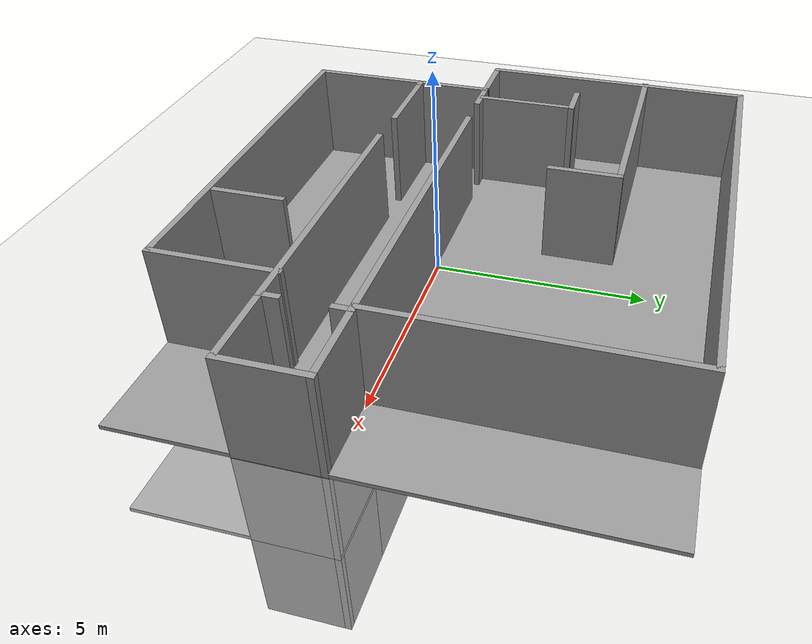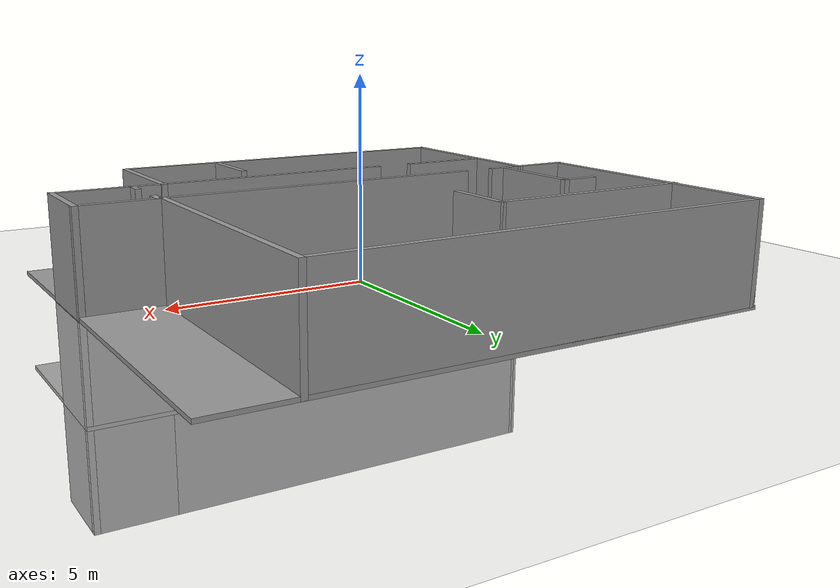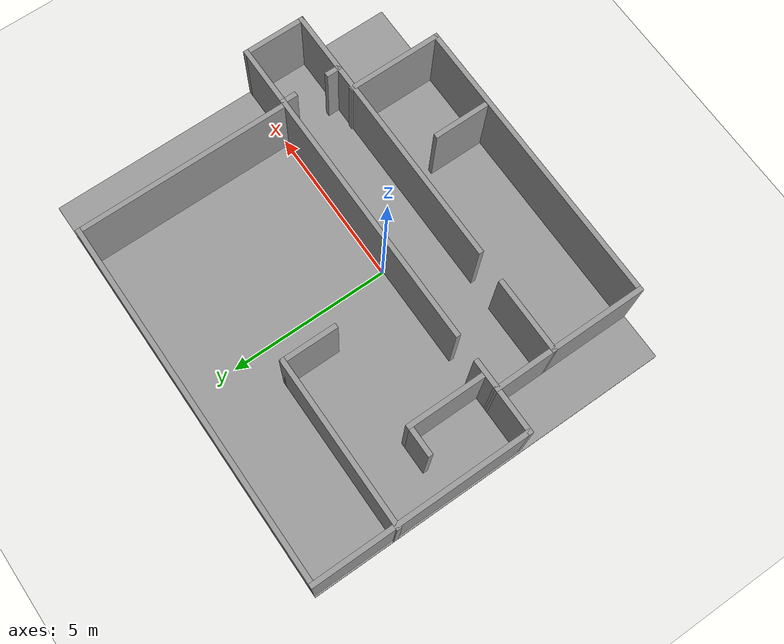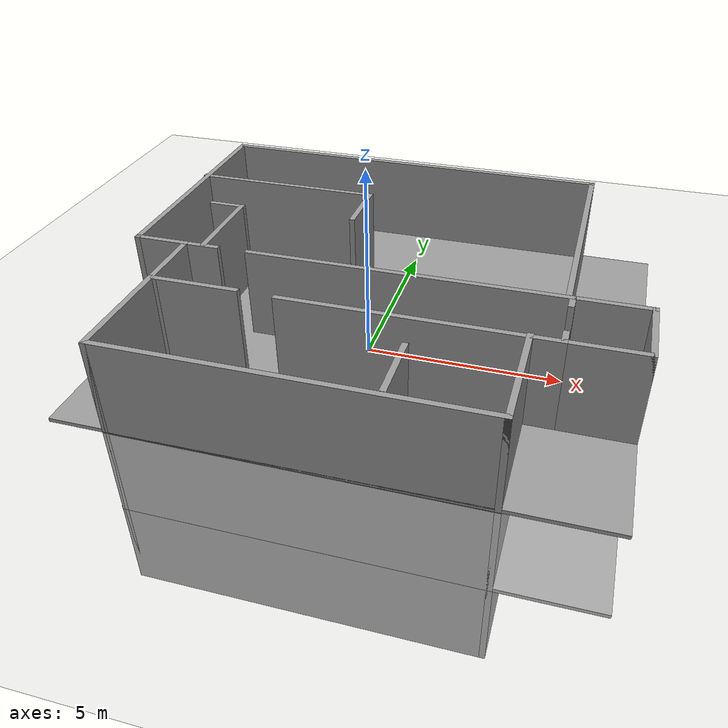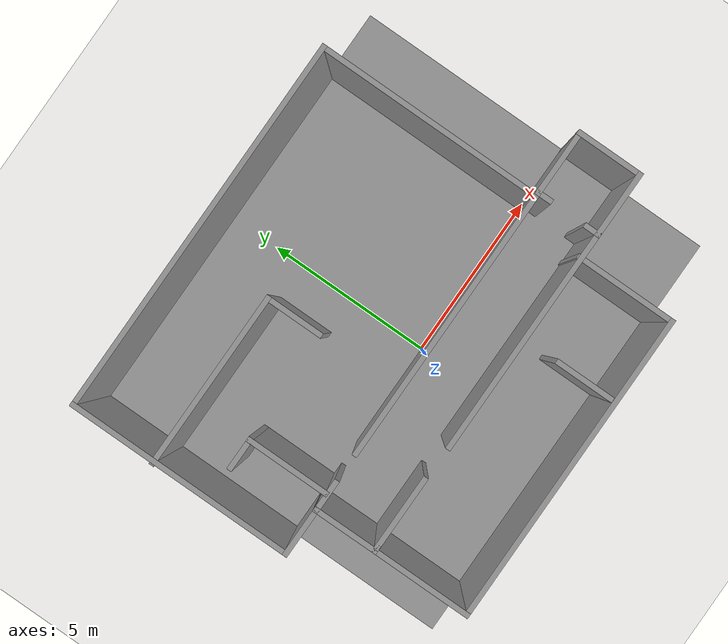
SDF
<sdf version="1.7">
 <world name="default">
  <light name="sun" type="directional">
   <pose>0 0 10 0 -0 0</pose>
   <diffuse>0.8 0.8 0.8 1</diffuse>
   <specular>0.2 0.2 0.2 1</specular>
   <attenuation>
    <range>1000</range>
    <constant>0.9</constant>
    <linear>0.01</linear>
    <quadratic>0.001</quadratic>
   </attenuation>
   <direction>-0.5 0.1 -0.9</direction>
   <spot><inner_angle>0</inner_angle><outer_angle>0</outer_angle><falloff>0</falloff></spot>
  </light>
  <model name="ground_plane">
   <static>1</static>
   <link name="link">
    <collision name="collision">
     <geometry><plane><normal>0 0 1</normal><size>100 100</size></plane></geometry>
     <surface>
      <contact><collide_bitmask>65535</collide_bitmask></contact>
      <friction><ode><mu>100</mu><mu2>50</mu2></ode></friction>
     </surface>
    </collision>
    <visual name="visual">
     <cast_shadows>0</cast_shadows>
     <geometry><plane><normal>0 0 1</normal><size>100 100</size></plane></geometry>
     <material>
      <script><uri>file://media/materials/scripts/gazebo.material</uri><name>Gazebo/Grey</name></script>
     </material>
    </visual>
   </link>
  </model>
  <gravity>0 0 -9.8</gravity>
  <magnetic_field>6e-06 2.3e-05 -4.2e-05</magnetic_field>
  <atmosphere type="adiabatic"/>
  <physics type="ode">
   <max_step_size>0.001</max_step_size>
   <real_time_factor>1</real_time_factor>
   <real_time_update_rate>1000</real_time_update_rate>
  </physics>
  <scene><ambient>0.4 0.4 0.4 1</ambient><background>0.7 0.7 0.7 1</background><shadows>1</shadows></scene>
  <audio><device>default</device></audio>
  <spherical_coordinates>
   <surface_model>EARTH_WGS84</surface_model>
   <latitude_deg>0</latitude_deg>
   <longitude_deg>0</longitude_deg>
   <elevation>0</elevation>
   <heading_deg>0</heading_deg>
  </spherical_coordinates>
  <model name="robotiklubi">
   <pose>0.28929 0.886817 -5 0 -0 0</pose>
   <link name="Floor_0">
    <collision name="Floor_0_Collision">
     <geometry><box><size>11.8504 4.81041 0.1</size></box></geometry>
     <pose>0 0 0.05 0 -0 0</pose>
    </collision>
    <visual name="Floor_0_Visual">
     <pose>0 0 0.05 0 -0 0</pose>
     <geometry><box><size>11.8504 4.81041 0.1</size></box></geometry>
     <material>
      <script><uri>file://media/materials/scripts/gazebo.material</uri><name>Gazebo/Grey</name></script>
      <ambient>1 1 1 1</ambient>
     </material>
     <meta><layer>1</layer></meta>
    </visual>
    <pose>0.696404 -3.29979 2.5 0 -0 0</pose>
   </link>
   <link name="Floor_1">
    <collision name="Floor_1_Collision">
     <geometry><box><size>13.2432 11.41 0.1</size></box></geometry>
     <pose>0 0 0.05 0 -0 0</pose>
    </collision>
    <visual name="Floor_1_Visual">
     <pose>0 0 0.05 0 -0 0</pose>
     <geometry><box><size>13.2432 11.41 0.1</size></box></geometry>
     <material>
      <script><uri>file://media/materials/scripts/gazebo.material</uri><name>Gazebo/Grey</name></script>
      <ambient>1 1 1 1</ambient>
     </material>
     <meta><layer>2</layer></meta>
    </visual>
    <pose>-0 -0 5 0 -0 0</pose>
   </link>
   <link name="Wall_0">
    <collision name="Wall_0_Collision">
     <geometry><box><size>10 0.15 2.5</size></box></geometry>
     <pose>0 0 1.25 0 -0 0</pose>
    </collision>
    <visual name="Wall_0_Visual">
     <pose>0 0 1.25 0 -0 0</pose>
     <geometry><box><size>10 0.15 2.5</size></box></geometry>
     <material>
      <script><uri>file://media/materials/scripts/gazebo.material</uri><name>Gazebo/Grey</name></script>
      <ambient>1 1 1 1</ambient>
     </material>
     <meta><layer>0</layer></meta>
    </visual>
    <pose>-0.22839 -0.97 0 0 -0 0</pose>
   </link>
   <link name="Wall_10">
    <collision name="Wall_10_Collision">
     <geometry><box><size>6.75 0.15 2.5</size></box></geometry>
     <pose>0 0 1.25 0 -0 0</pose>
    </collision>
    <visual name="Wall_10_Visual">
     <pose>0 0 1.25 0 -0 0</pose>
     <geometry><box><size>6.75 0.15 2.5</size></box></geometry>
     <material>
      <script><uri>file://media/materials/scripts/gazebo.material</uri><name>Gazebo/Grey</name></script>
      <ambient>1 1 1 1</ambient>
     </material>
     <meta><layer>0</layer></meta>
    </visual>
    <pose>1.39661 -2.82 0 0 -0 3.14159</pose>
   </link>
   <link name="Wall_13">
    <collision name="Wall_13_Collision">
     <geometry><box><size>2.25 0.15 2.5</size></box></geometry>
     <pose>0 0 1.25 0 -0 0</pose>
    </collision>
    <visual name="Wall_13_Visual">
     <pose>0 0 1.25 0 -0 0</pose>
     <geometry><box><size>2.25 0.15 2.5</size></box></geometry>
     <material>
      <script><uri>file://media/materials/scripts/gazebo.material</uri><name>Gazebo/Grey</name></script>
      <ambient>1 1 1 1</ambient>
     </material>
     <meta><layer>0</layer></meta>
    </visual>
    <pose>-3.99339 -2.78 0 0 -0 3.14159</pose>
   </link>
   <link name="Wall_14">
    <collision name="Wall_14_Collision">
     <geometry><box><size>0.25 0.15 2.5</size></box></geometry>
     <pose>0 0 1.25 0 -0 0</pose>
    </collision>
    <visual name="Wall_14_Visual">
     <pose>0 0 1.25 0 -0 0</pose>
     <geometry><box><size>0.25 0.15 2.5</size></box></geometry>
     <material>
      <script><uri>file://media/materials/scripts/gazebo.material</uri><name>Gazebo/Grey</name></script>
      <ambient>1 1 1 1</ambient>
     </material>
     <meta><layer>0</layer></meta>
    </visual>
    <pose>-5.09339 -2.78 0 0 -0 3.14159</pose>
   </link>
   <link name="Wall_15">
    <collision name="Wall_15_Collision">
     <geometry><box><size>1.96003 0.15 2.5</size></box></geometry>
     <pose>0 0 1.25 0 -0 0</pose>
    </collision>
    <visual name="Wall_15_Visual">
     <pose>0 0 1.25 0 -0 0</pose>
     <geometry><box><size>1.96003 0.15 2.5</size></box></geometry>
     <material>
      <script><uri>file://media/materials/scripts/gazebo.material</uri><name>Gazebo/Grey</name></script>
      <ambient>1 1 1 1</ambient>
     </material>
     <meta><layer>0</layer></meta>
    </visual>
    <pose>-5.14839 -1.875 0 0 -0 1.57632</pose>
   </link>
   <link name="Wall_19">
    <collision name="Wall_19_Collision">
     <geometry><box><size>3 0.15 2.5</size></box></geometry>
     <pose>0 0 1.25 0 -0 0</pose>
    </collision>
    <visual name="Wall_19_Visual">
     <pose>0 0 1.25 0 -0 0</pose>
     <geometry><box><size>3 0.15 2.5</size></box></geometry>
     <material>
      <script><uri>file://media/materials/scripts/gazebo.material</uri><name>Gazebo/Grey</name></script>
      <ambient>1 1 1 1</ambient>
     </material>
     <meta><layer>0</layer></meta>
    </visual>
    <pose>-5.14339 -4.205 0 0 -0 -1.5708</pose>
   </link>
   <link name="Wall_2">
    <collision name="Wall_2_Collision">
     <geometry><box><size>2 0.15 2.5</size></box></geometry>
     <pose>0 0 1.25 0 -0 0</pose>
    </collision>
    <visual name="Wall_2_Visual">
     <pose>0 0 1.25 0 -0 0</pose>
     <geometry><box><size>2 0.15 2.5</size></box></geometry>
     <material>
      <script><uri>file://media/materials/scripts/gazebo.material</uri><name>Gazebo/Grey</name></script>
      <ambient>1 1 1 1</ambient>
     </material>
     <meta><layer>0</layer></meta>
    </visual>
    <pose>5.62161 -2.82 0 0 -0 0</pose>
   </link>
   <link name="Wall_20">
    <collision name="Wall_20_Collision">
     <geometry><box><size>9.25 0.15 2.5</size></box></geometry>
     <pose>0 0 1.25 0 -0 0</pose>
    </collision>
    <visual name="Wall_20_Visual">
     <pose>0 0 1.25 0 -0 0</pose>
     <geometry><box><size>9.25 0.15 2.5</size></box></geometry>
     <material>
      <script><uri>file://media/materials/scripts/gazebo.material</uri><name>Gazebo/Grey</name></script>
      <ambient>1 1 1 1</ambient>
     </material>
     <meta><layer>0</layer></meta>
    </visual>
    <pose>-0.59339 -5.63 0 0 -0 0</pose>
   </link>
   <link name="Wall_21">
    <collision name="Wall_21_Collision">
     <geometry><box><size>3 0.15 2.5</size></box></geometry>
     <pose>0 0 1.25 0 -0 0</pose>
    </collision>
    <visual name="Wall_21_Visual">
     <pose>0 0 1.25 0 -0 0</pose>
     <geometry><box><size>3 0.15 2.5</size></box></geometry>
     <material>
      <script><uri>file://media/materials/scripts/gazebo.material</uri><name>Gazebo/Grey</name></script>
      <ambient>1 1 1 1</ambient>
     </material>
     <meta><layer>0</layer></meta>
    </visual>
    <pose>3.95661 -4.205 0 0 -0 1.5708</pose>
   </link>
   <link name="Wall_23">
    <collision name="Wall_23_Collision">
     <geometry><box><size>10 0.15 2.5</size></box></geometry>
     <pose>0 0 1.25 0 -0 0</pose>
    </collision>
    <visual name="Wall_23_Visual">
     <pose>0 0 1.25 0 -0 0</pose>
     <geometry><box><size>10 0.15 2.5</size></box></geometry>
     <material>
      <script><uri>file://media/materials/scripts/gazebo.material</uri><name>Gazebo/Grey</name></script>
      <ambient>1 1 1 1</ambient>
     </material>
     <meta><layer>1</layer></meta>
    </visual>
    <pose>-0.22839 -0.97 2.5 0 -0 0</pose>
   </link>
   <link name="Wall_24">
    <collision name="Wall_24_Collision">
     <geometry><box><size>2 0.15 2.5</size></box></geometry>
     <pose>0 0 1.25 0 -0 0</pose>
    </collision>
    <visual name="Wall_24_Visual">
     <pose>0 0 1.25 0 -0 0</pose>
     <geometry><box><size>2 0.15 2.5</size></box></geometry>
     <material>
      <script><uri>file://media/materials/scripts/gazebo.material</uri><name>Gazebo/Grey</name></script>
      <ambient>1 1 1 1</ambient>
     </material>
     <meta><layer>1</layer></meta>
    </visual>
    <pose>5.62161 -2.82 2.5 0 -0 0</pose>
   </link>
   <link name="Wall_25">
    <collision name="Wall_25_Collision">
     <geometry><box><size>2 0.15 2.5</size></box></geometry>
     <pose>0 0 1.25 0 -0 0</pose>
    </collision>
    <visual name="Wall_25_Visual">
     <pose>0 0 1.25 0 -0 0</pose>
     <geometry><box><size>2 0.15 2.5</size></box></geometry>
     <material>
      <script><uri>file://media/materials/scripts/gazebo.material</uri><name>Gazebo/Grey</name></script>
      <ambient>1 1 1 1</ambient>
     </material>
     <meta><layer>1</layer></meta>
    </visual>
    <pose>6.54661 -1.895 2.5 0 -0 1.5708</pose>
   </link>
   <link name="Wall_26">
    <collision name="Wall_26_Collision">
     <geometry><box><size>2 0.15 2.5</size></box></geometry>
     <pose>0 0 1.25 0 -0 0</pose>
    </collision>
    <visual name="Wall_26_Visual">
     <pose>0 0 1.25 0 -0 0</pose>
     <geometry><box><size>2 0.15 2.5</size></box></geometry>
     <material>
      <script><uri>file://media/materials/scripts/gazebo.material</uri><name>Gazebo/Grey</name></script>
      <ambient>1 1 1 1</ambient>
     </material>
     <meta><layer>1</layer></meta>
    </visual>
    <pose>5.62161 -0.97 2.5 0 -0 3.14159</pose>
   </link>
   <link name="Wall_27">
    <collision name="Wall_27_Collision">
     <geometry><box><size>0.5 0.15 2.5</size></box></geometry>
     <pose>0 0 1.25 0 -0 0</pose>
    </collision>
    <visual name="Wall_27_Visual">
     <pose>0 0 1.25 0 -0 0</pose>
     <geometry><box><size>0.5 0.15 2.5</size></box></geometry>
     <material>
      <script><uri>file://media/materials/scripts/gazebo.material</uri><name>Gazebo/Grey</name></script>
      <ambient>1 1 1 1</ambient>
     </material>
     <meta><layer>1</layer></meta>
    </visual>
    <pose>4.69661 -2.645 2.5 0 -0 1.5708</pose>
   </link>
   <link name="Wall_28">
    <collision name="Wall_28_Collision">
     <geometry><box><size>0.5 0.15 2.5</size></box></geometry>
     <pose>0 0 1.25 0 -0 0</pose>
    </collision>
    <visual name="Wall_28_Visual">
     <pose>0 0 1.25 0 -0 0</pose>
     <geometry><box><size>0.5 0.15 2.5</size></box></geometry>
     <material>
      <script><uri>file://media/materials/scripts/gazebo.material</uri><name>Gazebo/Grey</name></script>
      <ambient>1 1 1 1</ambient>
     </material>
     <meta><layer>1</layer></meta>
    </visual>
    <pose>4.69661 -1.145 2.5 0 -0 -1.5708</pose>
   </link>
   <link name="Wall_29">
    <collision name="Wall_29_Collision">
     <geometry><box><size>6.75 0.15 2.5</size></box></geometry>
     <pose>0 0 1.25 0 -0 0</pose>
    </collision>
    <visual name="Wall_29_Visual">
     <pose>0 0 1.25 0 -0 0</pose>
     <geometry><box><size>6.75 0.15 2.5</size></box></geometry>
     <material>
      <script><uri>file://media/materials/scripts/gazebo.material</uri><name>Gazebo/Grey</name></script>
      <ambient>1 1 1 1</ambient>
     </material>
     <meta><layer>1</layer></meta>
    </visual>
    <pose>1.39661 -2.82 2.5 0 -0 3.14159</pose>
   </link>
   <link name="Wall_3">
    <collision name="Wall_3_Collision">
     <geometry><box><size>2 0.15 2.5</size></box></geometry>
     <pose>0 0 1.25 0 -0 0</pose>
    </collision>
    <visual name="Wall_3_Visual">
     <pose>0 0 1.25 0 -0 0</pose>
     <geometry><box><size>2 0.15 2.5</size></box></geometry>
     <material>
      <script><uri>file://media/materials/scripts/gazebo.material</uri><name>Gazebo/Grey</name></script>
      <ambient>1 1 1 1</ambient>
     </material>
     <meta><layer>0</layer></meta>
    </visual>
    <pose>6.54661 -1.895 0 0 -0 1.5708</pose>
   </link>
   <link name="Wall_30">
    <collision name="Wall_30_Collision">
     <geometry><box><size>2.25 0.15 2.5</size></box></geometry>
     <pose>0 0 1.25 0 -0 0</pose>
    </collision>
    <visual name="Wall_30_Visual">
     <pose>0 0 1.25 0 -0 0</pose>
     <geometry><box><size>2.25 0.15 2.5</size></box></geometry>
     <material>
      <script><uri>file://media/materials/scripts/gazebo.material</uri><name>Gazebo/Grey</name></script>
      <ambient>1 1 1 1</ambient>
     </material>
     <meta><layer>1</layer></meta>
    </visual>
    <pose>-3.99339 -2.78 2.5 0 -0 3.14159</pose>
   </link>
   <link name="Wall_31">
    <collision name="Wall_31_Collision">
     <geometry><box><size>0.25 0.15 2.5</size></box></geometry>
     <pose>0 0 1.25 0 -0 0</pose>
    </collision>
    <visual name="Wall_31_Visual">
     <pose>0 0 1.25 0 -0 0</pose>
     <geometry><box><size>0.25 0.15 2.5</size></box></geometry>
     <material>
      <script><uri>file://media/materials/scripts/gazebo.material</uri><name>Gazebo/Grey</name></script>
      <ambient>1 1 1 1</ambient>
     </material>
     <meta><layer>1</layer></meta>
    </visual>
    <pose>-5.09339 -2.78 2.5 0 -0 3.14159</pose>
   </link>
   <link name="Wall_32">
    <collision name="Wall_32_Collision">
     <geometry><box><size>1.96003 0.15 2.5</size></box></geometry>
     <pose>0 0 1.25 0 -0 0</pose>
    </collision>
    <visual name="Wall_32_Visual">
     <pose>0 0 1.25 0 -0 0</pose>
     <geometry><box><size>1.96003 0.15 2.5</size></box></geometry>
     <material>
      <script><uri>file://media/materials/scripts/gazebo.material</uri><name>Gazebo/Grey</name></script>
      <ambient>1 1 1 1</ambient>
     </material>
     <meta><layer>1</layer></meta>
    </visual>
    <pose>-5.14839 -1.875 2.5 0 -0 1.57632</pose>
   </link>
   <link name="Wall_33">
    <collision name="Wall_33_Collision">
     <geometry><box><size>3 0.15 2.5</size></box></geometry>
     <pose>0 0 1.25 0 -0 0</pose>
    </collision>
    <visual name="Wall_33_Visual">
     <pose>0 0 1.25 0 -0 0</pose>
     <geometry><box><size>3 0.15 2.5</size></box></geometry>
     <material>
      <script><uri>file://media/materials/scripts/gazebo.material</uri><name>Gazebo/Grey</name></script>
      <ambient>1 1 1 1</ambient>
     </material>
     <meta><layer>1</layer></meta>
    </visual>
    <pose>-5.14339 -4.205 2.5 0 -0 -1.5708</pose>
   </link>
   <link name="Wall_34">
    <collision name="Wall_34_Collision">
     <geometry><box><size>9.25 0.15 2.5</size></box></geometry>
     <pose>0 0 1.25 0 -0 0</pose>
    </collision>
    <visual name="Wall_34_Visual">
     <pose>0 0 1.25 0 -0 0</pose>
     <geometry><box><size>9.25 0.15 2.5</size></box></geometry>
     <material>
      <script><uri>file://media/materials/scripts/gazebo.material</uri><name>Gazebo/Grey</name></script>
      <ambient>1 1 1 1</ambient>
     </material>
     <meta><layer>1</layer></meta>
    </visual>
    <pose>-0.59339 -5.63 2.5 0 -0 0</pose>
   </link>
   <link name="Wall_35">
    <collision name="Wall_35_Collision">
     <geometry><box><size>3 0.15 2.5</size></box></geometry>
     <pose>0 0 1.25 0 -0 0</pose>
    </collision>
    <visual name="Wall_35_Visual">
     <pose>0 0 1.25 0 -0 0</pose>
     <geometry><box><size>3 0.15 2.5</size></box></geometry>
     <material>
      <script><uri>file://media/materials/scripts/gazebo.material</uri><name>Gazebo/Grey</name></script>
      <ambient>1 1 1 1</ambient>
     </material>
     <meta><layer>1</layer></meta>
    </visual>
    <pose>3.95661 -4.205 2.5 0 -0 1.5708</pose>
   </link>
   <link name="Wall_37">
    <collision name="Wall_37_Collision">
     <geometry><box><size>2 0.15 2.5</size></box></geometry>
     <pose>0 0 1.25 0 -0 0</pose>
    </collision>
    <visual name="Wall_37_Visual">
     <pose>0 0 1.25 0 -0 0</pose>
     <geometry><box><size>2 0.15 2.5</size></box></geometry>
     <material>
      <script><uri>file://media/materials/scripts/gazebo.material</uri><name>Gazebo/Grey</name></script>
      <ambient>1 1 1 1</ambient>
     </material>
     <meta><layer>2</layer></meta>
    </visual>
    <pose>5.62161 -2.82 5 0 -0 0</pose>
   </link>
   <link name="Wall_38">
    <collision name="Wall_38_Collision">
     <geometry><box><size>2 0.15 2.5</size></box></geometry>
     <pose>0 0 1.25 0 -0 0</pose>
    </collision>
    <visual name="Wall_38_Visual">
     <pose>0 0 1.25 0 -0 0</pose>
     <geometry><box><size>2 0.15 2.5</size></box></geometry>
     <material>
      <script><uri>file://media/materials/scripts/gazebo.material</uri><name>Gazebo/Grey</name></script>
      <ambient>1 1 1 1</ambient>
     </material>
     <meta><layer>2</layer></meta>
    </visual>
    <pose>6.54661 -1.895 5 0 -0 1.5708</pose>
   </link>
   <link name="Wall_39">
    <collision name="Wall_39_Collision">
     <geometry><box><size>2 0.15 2.5</size></box></geometry>
     <pose>0 0 1.25 0 -0 0</pose>
    </collision>
    <visual name="Wall_39_Visual">
     <pose>0 0 1.25 0 -0 0</pose>
     <geometry><box><size>2 0.15 2.5</size></box></geometry>
     <material>
      <script><uri>file://media/materials/scripts/gazebo.material</uri><name>Gazebo/Grey</name></script>
      <ambient>1 1 1 1</ambient>
     </material>
     <meta><layer>2</layer></meta>
    </visual>
    <pose>5.62161 -0.97 5 0 -0 3.14159</pose>
   </link>
   <link name="Wall_4">
    <collision name="Wall_4_Collision">
     <geometry><box><size>2 0.15 2.5</size></box></geometry>
     <pose>0 0 1.25 0 -0 0</pose>
    </collision>
    <visual name="Wall_4_Visual">
     <pose>0 0 1.25 0 -0 0</pose>
     <geometry><box><size>2 0.15 2.5</size></box></geometry>
     <material>
      <script><uri>file://media/materials/scripts/gazebo.material</uri><name>Gazebo/Grey</name></script>
      <ambient>1 1 1 1</ambient>
     </material>
     <meta><layer>0</layer></meta>
    </visual>
    <pose>5.62161 -0.97 0 0 -0 3.14159</pose>
   </link>
   <link name="Wall_40">
    <collision name="Wall_40_Collision">
     <geometry><box><size>0.5 0.15 2.5</size></box></geometry>
     <pose>0 0 1.25 0 -0 0</pose>
    </collision>
    <visual name="Wall_40_Visual">
     <pose>0 0 1.25 0 -0 0</pose>
     <geometry><box><size>0.5 0.15 2.5</size></box></geometry>
     <material>
      <script><uri>file://media/materials/scripts/gazebo.material</uri><name>Gazebo/Grey</name></script>
      <ambient>1 1 1 1</ambient>
     </material>
     <meta><layer>2</layer></meta>
    </visual>
    <pose>4.69661 -2.645 5 0 -0 1.5708</pose>
   </link>
   <link name="Wall_41">
    <collision name="Wall_41_Collision">
     <geometry><box><size>0.5 0.15 2.5</size></box></geometry>
     <pose>0 0 1.25 0 -0 0</pose>
    </collision>
    <visual name="Wall_41_Visual">
     <pose>0 0 1.25 0 -0 0</pose>
     <geometry><box><size>0.5 0.15 2.5</size></box></geometry>
     <material>
      <script><uri>file://media/materials/scripts/gazebo.material</uri><name>Gazebo/Grey</name></script>
      <ambient>1 1 1 1</ambient>
     </material>
     <meta><layer>2</layer></meta>
    </visual>
    <pose>4.69661 -1.145 5 0 -0 -1.5708</pose>
   </link>
   <link name="Wall_42">
    <collision name="Wall_42_Collision">
     <geometry><box><size>6.75 0.15 2.5</size></box></geometry>
     <pose>0 0 1.25 0 -0 0</pose>
    </collision>
    <visual name="Wall_42_Visual">
     <pose>0 0 1.25 0 -0 0</pose>
     <geometry><box><size>6.75 0.15 2.5</size></box></geometry>
     <material>
      <script><uri>file://media/materials/scripts/gazebo.material</uri><name>Gazebo/Grey</name></script>
      <ambient>1 1 1 1</ambient>
     </material>
     <meta><layer>2</layer></meta>
    </visual>
    <pose>1.39661 -2.82 5 0 -0 3.14159</pose>
   </link>
   <link name="Wall_43">
    <collision name="Wall_43_Collision">
     <geometry><box><size>2.25 0.15 2.5</size></box></geometry>
     <pose>0 0 1.25 0 -0 0</pose>
    </collision>
    <visual name="Wall_43_Visual">
     <pose>0 0 1.25 0 -0 0</pose>
     <geometry><box><size>2.25 0.15 2.5</size></box></geometry>
     <material>
      <script><uri>file://media/materials/scripts/gazebo.material</uri><name>Gazebo/Grey</name></script>
      <ambient>1 1 1 1</ambient>
     </material>
     <meta><layer>2</layer></meta>
    </visual>
    <pose>-3.99339 -2.78 5 0 -0 3.14159</pose>
   </link>
   <link name="Wall_44">
    <collision name="Wall_44_Collision">
     <geometry><box><size>0.25 0.15 2.5</size></box></geometry>
     <pose>0 0 1.25 0 -0 0</pose>
    </collision>
    <visual name="Wall_44_Visual">
     <pose>0 0 1.25 0 -0 0</pose>
     <geometry><box><size>0.25 0.15 2.5</size></box></geometry>
     <material>
      <script><uri>file://media/materials/scripts/gazebo.material</uri><name>Gazebo/Grey</name></script>
      <ambient>1 1 1 1</ambient>
     </material>
     <meta><layer>2</layer></meta>
    </visual>
    <pose>-5.09339 -2.78 5 0 -0 3.14159</pose>
   </link>
   <link name="Wall_45">
    <collision name="Wall_45_Collision">
     <geometry><box><size>1.96003 0.15 2.5</size></box></geometry>
     <pose>0 0 1.25 0 -0 0</pose>
    </collision>
    <visual name="Wall_45_Visual">
     <pose>0 0 1.25 0 -0 0</pose>
     <geometry><box><size>1.96003 0.15 2.5</size></box></geometry>
     <material>
      <script><uri>file://media/materials/scripts/gazebo.material</uri><name>Gazebo/Grey</name></script>
      <ambient>1 1 1 1</ambient>
     </material>
     <meta><layer>2</layer></meta>
    </visual>
    <pose>-5.14839 -1.875 5 0 -0 1.57632</pose>
   </link>
   <link name="Wall_46">
    <collision name="Wall_46_Collision">
     <geometry><box><size>3 0.15 2.5</size></box></geometry>
     <pose>0 0 1.25 0 -0 0</pose>
    </collision>
    <visual name="Wall_46_Visual">
     <pose>0 0 1.25 0 -0 0</pose>
     <geometry><box><size>3 0.15 2.5</size></box></geometry>
     <material>
      <script><uri>file://media/materials/scripts/gazebo.material</uri><name>Gazebo/Grey</name></script>
      <ambient>1 1 1 1</ambient>
     </material>
     <meta><layer>2</layer></meta>
    </visual>
    <pose>-5.14339 -4.205 5 0 -0 -1.5708</pose>
   </link>
   <link name="Wall_47">
    <collision name="Wall_47_Collision">
     <geometry><box><size>9.25 0.15 2.5</size></box></geometry>
     <pose>0 0 1.25 0 -0 0</pose>
    </collision>
    <visual name="Wall_47_Visual">
     <pose>0 0 1.25 0 -0 0</pose>
     <geometry><box><size>9.25 0.15 2.5</size></box></geometry>
     <material>
      <script><uri>file://media/materials/scripts/gazebo.material</uri><name>Gazebo/Grey</name></script>
      <ambient>1 1 1 1</ambient>
     </material>
     <meta><layer>2</layer></meta>
    </visual>
    <pose>-0.59339 -5.63 5 0 -0 0</pose>
   </link>
   <link name="Wall_48">
    <collision name="Wall_48_Collision">
     <geometry><box><size>3 0.15 2.5</size></box></geometry>
     <pose>0 0 1.25 0 -0 0</pose>
    </collision>
    <visual name="Wall_48_Visual">
     <pose>0 0 1.25 0 -0 0</pose>
     <geometry><box><size>3 0.15 2.5</size></box></geometry>
     <material>
      <script><uri>file://media/materials/scripts/gazebo.material</uri><name>Gazebo/Grey</name></script>
      <ambient>1 1 1 1</ambient>
     </material>
     <meta><layer>2</layer></meta>
    </visual>
    <pose>3.95661 -4.205 5 0 -0 1.5708</pose>
   </link>
   <link name="Wall_49">
    <collision name="Wall_49_Collision">
     <geometry><box><size>1.75 0.15 2.5</size></box></geometry>
     <pose>0 0 1.25 0 -0 0</pose>
    </collision>
    <visual name="Wall_49_Visual">
     <pose>0 0 1.25 0 -0 0</pose>
     <geometry><box><size>1.75 0.15 2.5</size></box></geometry>
     <material>
      <script><uri>file://media/materials/scripts/gazebo.material</uri><name>Gazebo/Grey</name></script>
      <ambient>1 1 1 1</ambient>
     </material>
     <meta><layer>2</layer></meta>
    </visual>
    <pose>1.45339 -4.67273 5 0 -0 1.5708</pose>
   </link>
   <link name="Wall_51">
    <collision name="Wall_51_Collision">
     <geometry><box><size>1 0.15 2.5</size></box></geometry>
     <pose>0 0 1.25 0 -0 0</pose>
    </collision>
    <visual name="Wall_51_Visual">
     <pose>0 0 1.25 0 -0 0</pose>
     <geometry><box><size>1 0.15 2.5</size></box></geometry>
     <material>
      <script><uri>file://media/materials/scripts/gazebo.material</uri><name>Gazebo/Grey</name></script>
      <ambient>1 1 1 1</ambient>
     </material>
     <meta><layer>2</layer></meta>
    </visual>
    <pose>-4.72839 -0.97 5 0 -0 0</pose>
   </link>
   <link name="Wall_53">
    <collision name="Wall_53_Collision">
     <geometry><box><size>8.25 0.15 2.5</size></box></geometry>
     <pose>0 0 1.25 0 -0 0</pose>
    </collision>
    <visual name="Wall_53_Visual">
     <pose>0 0 1.25 0 -0 0</pose>
     <geometry><box><size>8.25 0.15 2.5</size></box></geometry>
     <material>
      <script><uri>file://media/materials/scripts/gazebo.material</uri><name>Gazebo/Grey</name></script>
      <ambient>1 1 1 1</ambient>
     </material>
     <meta><layer>2</layer></meta>
    </visual>
    <pose>0.64661 -0.97 5 0 -0 3.14159</pose>
   </link>
   <link name="Wall_55">
    <collision name="Wall_55_Collision">
     <geometry><box><size>1.5 0.15 2.5</size></box></geometry>
     <pose>0 0 1.25 0 -0 0</pose>
    </collision>
    <visual name="Wall_55_Visual">
     <pose>0 0 1.25 0 -0 0</pose>
     <geometry><box><size>1.5 0.15 2.5</size></box></geometry>
     <material>
      <script><uri>file://media/materials/scripts/gazebo.material</uri><name>Gazebo/Grey</name></script>
      <ambient>1 1 1 1</ambient>
     </material>
     <meta><layer>2</layer></meta>
    </visual>
    <pose>-5.82839 -0.97 5 0 -0 3.14159</pose>
   </link>
   <link name="Wall_56">
    <collision name="Wall_56_Collision">
     <geometry><box><size>6.75 0.15 2.5</size></box></geometry>
     <pose>0 0 1.25 0 -0 0</pose>
    </collision>
    <visual name="Wall_56_Visual">
     <pose>0 0 1.25 0 -0 0</pose>
     <geometry><box><size>6.75 0.15 2.5</size></box></geometry>
     <material>
      <script><uri>file://media/materials/scripts/gazebo.material</uri><name>Gazebo/Grey</name></script>
      <ambient>1 1 1 1</ambient>
     </material>
     <meta><layer>2</layer></meta>
    </visual>
    <pose>-6.50339 2.33 5 0 -0 1.5708</pose>
   </link>
   <link name="Wall_57">
    <collision name="Wall_57_Collision">
     <geometry><box><size>11.25 0.15 2.5</size></box></geometry>
     <pose>0 0 1.25 0 -0 0</pose>
    </collision>
    <visual name="Wall_57_Visual">
     <pose>0 0 1.25 0 -0 0</pose>
     <geometry><box><size>11.25 0.15 2.5</size></box></geometry>
     <material>
      <script><uri>file://media/materials/scripts/gazebo.material</uri><name>Gazebo/Grey</name></script>
      <ambient>1 1 1 1</ambient>
     </material>
     <meta><layer>2</layer></meta>
    </visual>
    <pose>-0.95339 5.63 5 0 -0 0</pose>
   </link>
   <link name="Wall_58">
    <collision name="Wall_58_Collision">
     <geometry><box><size>6.75 0.15 2.5</size></box></geometry>
     <pose>0 0 1.25 0 -0 0</pose>
    </collision>
    <visual name="Wall_58_Visual">
     <pose>0 0 1.25 0 -0 0</pose>
     <geometry><box><size>6.75 0.15 2.5</size></box></geometry>
     <material>
      <script><uri>file://media/materials/scripts/gazebo.material</uri><name>Gazebo/Grey</name></script>
      <ambient>1 1 1 1</ambient>
     </material>
     <meta><layer>2</layer></meta>
    </visual>
    <pose>4.59661 2.33 5 0 -0 -1.5708</pose>
   </link>
   <link name="Wall_6">
    <collision name="Wall_6_Collision">
     <geometry><box><size>0.5 0.15 2.5</size></box></geometry>
     <pose>0 0 1.25 0 -0 0</pose>
    </collision>
    <visual name="Wall_6_Visual">
     <pose>0 0 1.25 0 -0 0</pose>
     <geometry><box><size>0.5 0.15 2.5</size></box></geometry>
     <material>
      <script><uri>file://media/materials/scripts/gazebo.material</uri><name>Gazebo/Grey</name></script>
      <ambient>1 1 1 1</ambient>
     </material>
     <meta><layer>0</layer></meta>
    </visual>
    <pose>4.69661 -2.645 0 0 -0 1.5708</pose>
   </link>
   <link name="Wall_60">
    <collision name="Wall_60_Collision">
     <geometry><box><size>2.5 0.15 2.5</size></box></geometry>
     <pose>0 0 1.25 0 -0 0</pose>
    </collision>
    <visual name="Wall_60_Visual">
     <pose>0 0 1.25 0 -0 0</pose>
     <geometry><box><size>2.5 0.15 2.5</size></box></geometry>
     <material>
      <script><uri>file://media/materials/scripts/gazebo.material</uri><name>Gazebo/Grey</name></script>
      <ambient>1 1 1 1</ambient>
     </material>
     <meta><layer>2</layer></meta>
    </visual>
    <pose>-4.66661 0.262272 5 0 -0 1.5708</pose>
   </link>
   <link name="Wall_61">
    <collision name="Wall_61_Collision">
     <geometry><box><size>1 0.15 2.5</size></box></geometry>
     <pose>0 0 1.25 0 -0 0</pose>
    </collision>
    <visual name="Wall_61_Visual">
     <pose>0 0 1.25 0 -0 0</pose>
     <geometry><box><size>1 0.15 2.5</size></box></geometry>
     <material>
      <script><uri>file://media/materials/scripts/gazebo.material</uri><name>Gazebo/Grey</name></script>
      <ambient>1 1 1 1</ambient>
     </material>
     <meta><layer>2</layer></meta>
    </visual>
    <pose>-5.09161 1.43727 5 0 -0 3.14159</pose>
   </link>
   <link name="Wall_63">
    <collision name="Wall_63_Collision">
     <geometry><box><size>5.25 0.15 2.5</size></box></geometry>
     <pose>0 0 1.25 0 -0 0</pose>
    </collision>
    <visual name="Wall_63_Visual">
     <pose>0 0 1.25 0 -0 0</pose>
     <geometry><box><size>5.25 0.15 2.5</size></box></geometry>
     <material>
      <script><uri>file://media/materials/scripts/gazebo.material</uri><name>Gazebo/Grey</name></script>
      <ambient>1 1 1 1</ambient>
     </material>
     <meta><layer>2</layer></meta>
    </visual>
    <pose>-3.99661 3.12727 5 0 -0 0</pose>
   </link>
   <link name="Wall_64">
    <collision name="Wall_64_Collision">
     <geometry><box><size>1.75 0.15 2.5</size></box></geometry>
     <pose>0 0 1.25 0 -0 0</pose>
    </collision>
    <visual name="Wall_64_Visual">
     <pose>0 0 1.25 0 -0 0</pose>
     <geometry><box><size>1.75 0.15 2.5</size></box></geometry>
     <material>
      <script><uri>file://media/materials/scripts/gazebo.material</uri><name>Gazebo/Grey</name></script>
      <ambient>1 1 1 1</ambient>
     </material>
     <meta><layer>2</layer></meta>
    </visual>
    <pose>-1.44661 2.32727 5 0 -0 -1.5708</pose>
   </link>
   <link name="Wall_8">
    <collision name="Wall_8_Collision">
     <geometry><box><size>0.5 0.15 2.5</size></box></geometry>
     <pose>0 0 1.25 0 -0 0</pose>
    </collision>
    <visual name="Wall_8_Visual">
     <pose>0 0 1.25 0 -0 0</pose>
     <geometry><box><size>0.5 0.15 2.5</size></box></geometry>
     <material>
      <script><uri>file://media/materials/scripts/gazebo.material</uri><name>Gazebo/Grey</name></script>
      <ambient>1 1 1 1</ambient>
     </material>
     <meta><layer>0</layer></meta>
    </visual>
    <pose>4.69661 -1.145 0 0 -0 -1.5708</pose>
   </link>
   <static>1</static>
  </model>
 </world>
</sdf>
